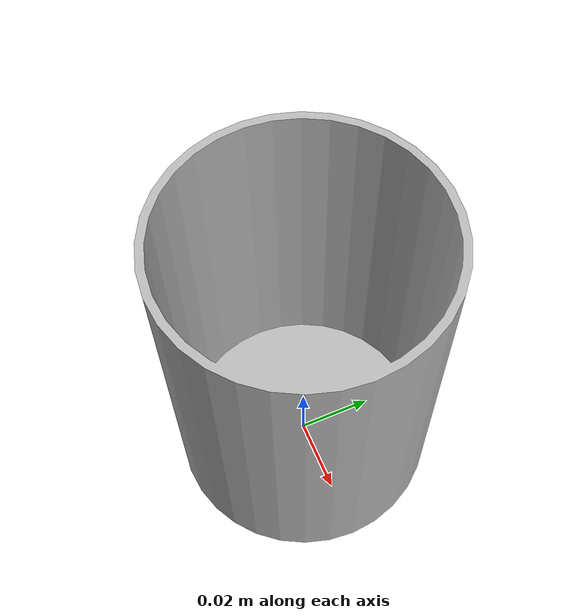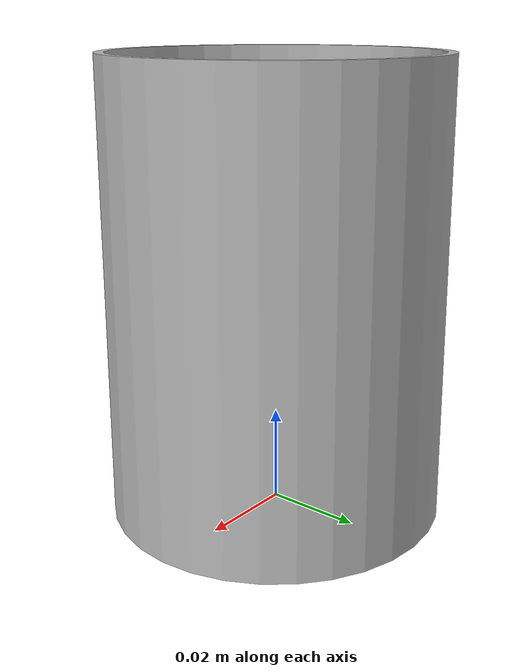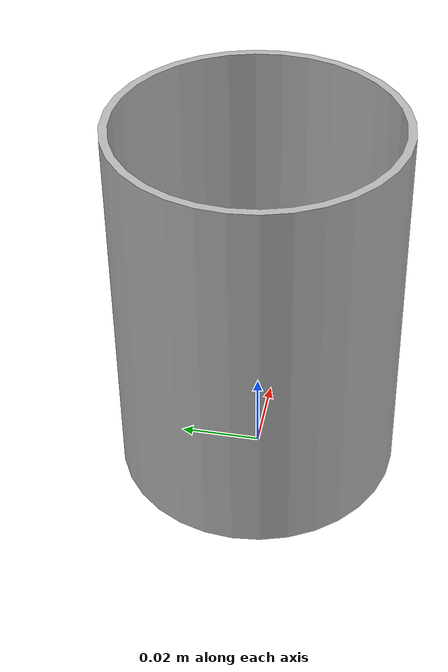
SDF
<?xml version="1.0"?>
<sdf version="1.10">
  <model name="beaker">
    <static>true</static>
    <link name="base_link">
      <inertial>
        <pose>0.000000 0.000000 0.047500 0 0 0</pose>
        <mass>0.1500</mass>
        <inertia>
          <ixx>0.00015875</ixx><ixy>0</ixy><ixz>0</ixz>
          <iyy>0.00015875</iyy><iyz>0</iyz>
          <izz>0.00009188</izz>
        </inertia>
      </inertial>
      <collision name="collision">
        <pose>0.000000 0.000000 0.047500 0 0 0</pose>
        <geometry>
          <cylinder><radius>0.035000</radius><length>0.095000</length></cylinder>
        </geometry>
        <surface>
          <friction><ode><mu>0.9</mu><mu2>0.9</mu2></ode></friction>
        </surface>
      </collision>
      <visual name="visual">
        <geometry>
          <mesh><uri>model://beaker/meshes/beaker.obj</uri></mesh>
        </geometry>
      </visual>
    </link>
  </model>
</sdf>
